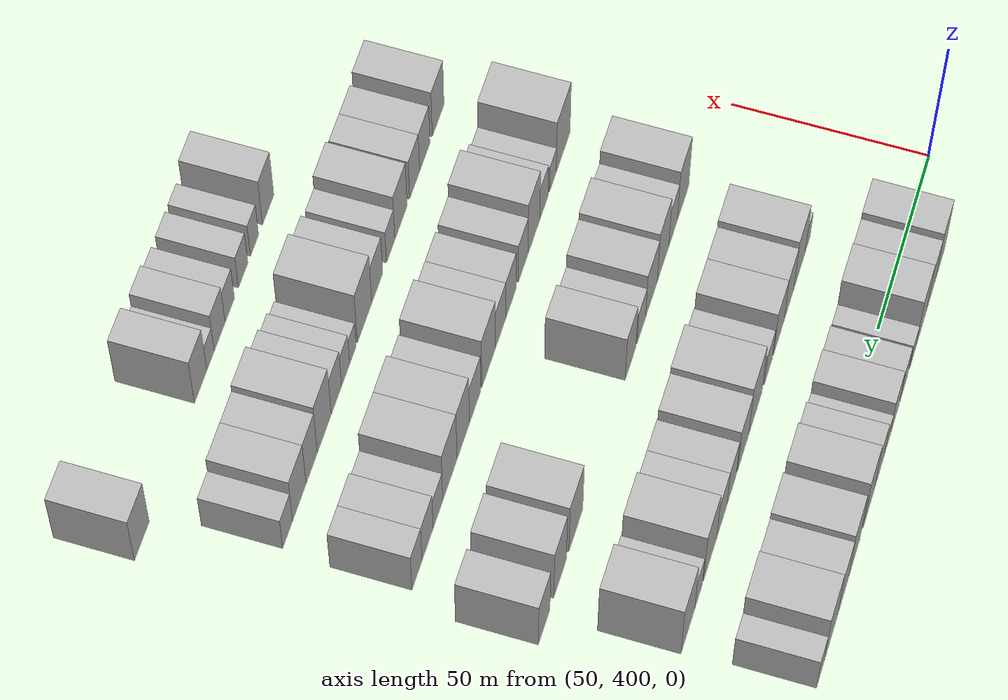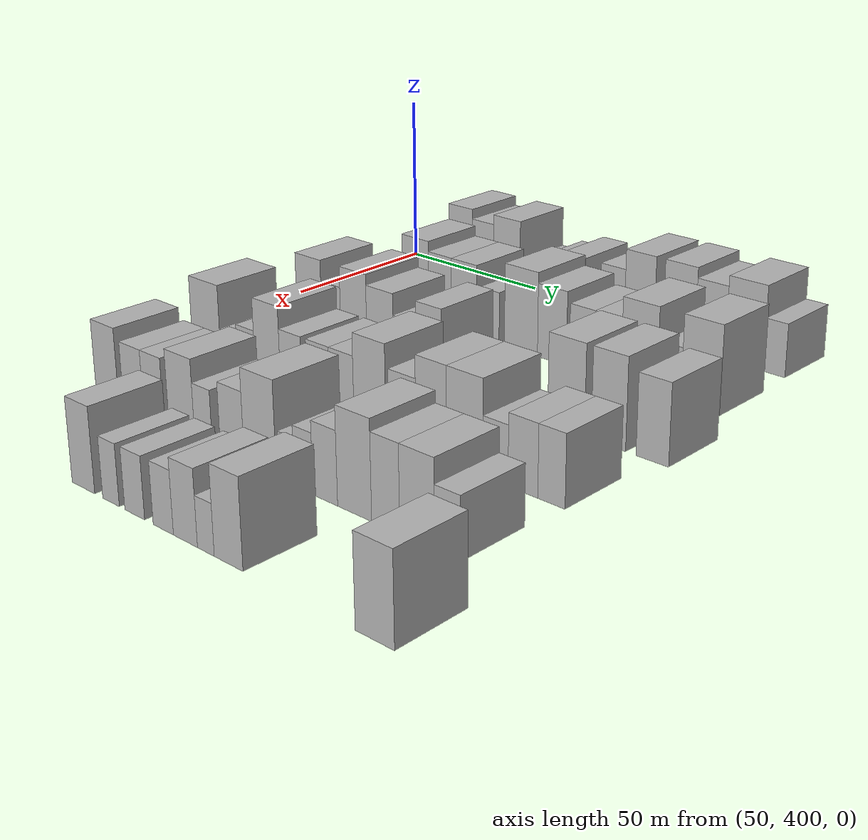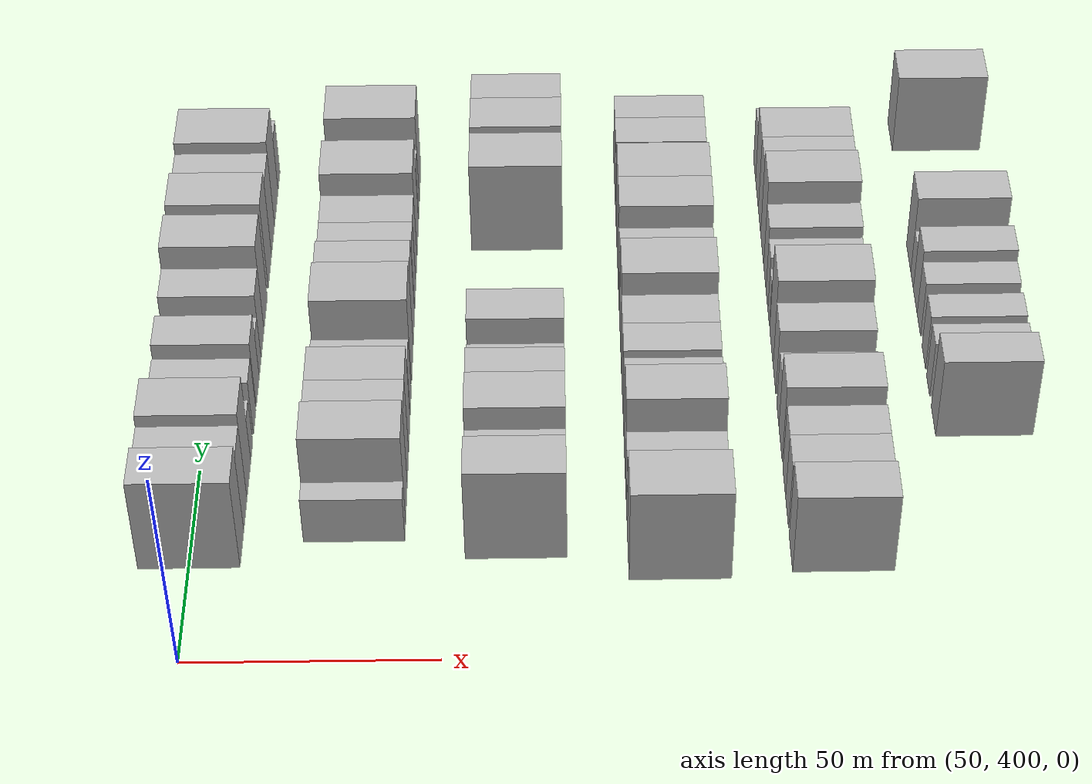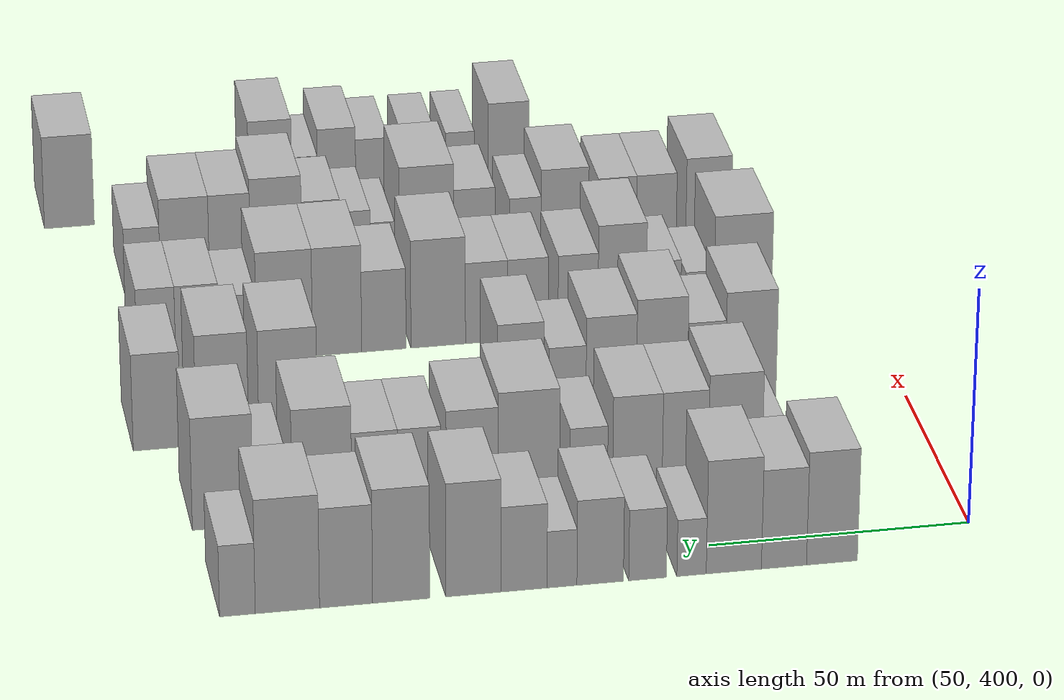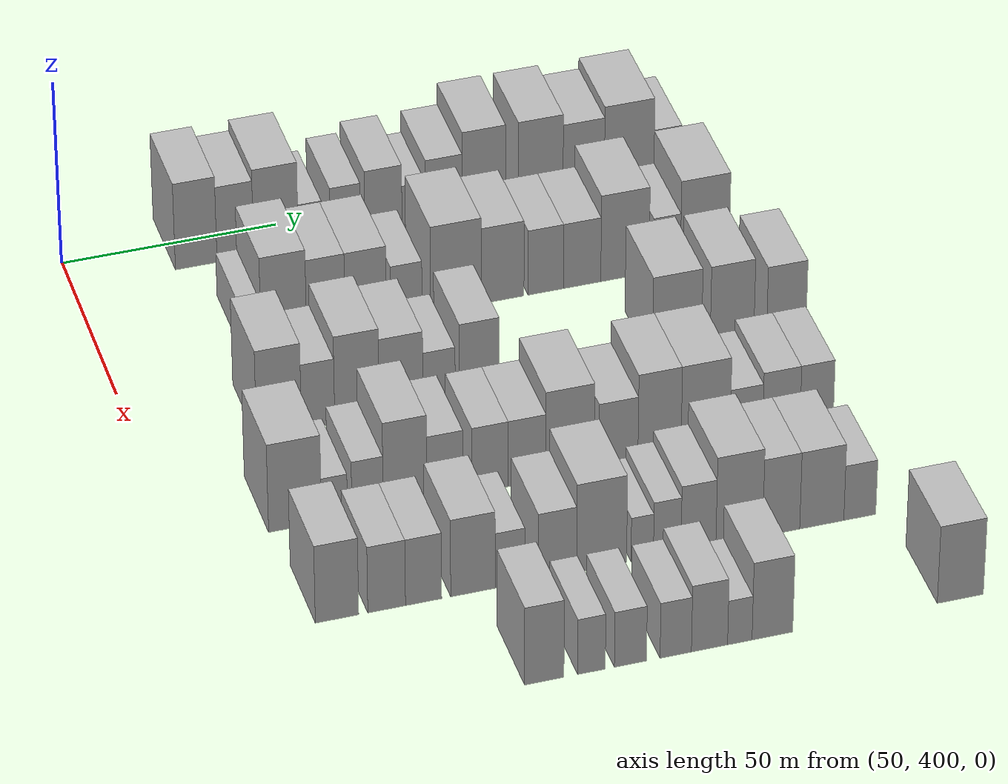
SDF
<sdf version="1.6">
 <world name="default">
  <model name="building_109">
   <static>1</static>
   <pose>50.0000 428.7145 0 0.000000 0.000000 0.000000</pose>
   <link name="link">
    <pose>0 0 12.00 0 0 0</pose>
    <collision name="collision"><geometry><box><size>20.0000 9.7054 24.0000</size></box></geometry></collision>
    <visual name="visual">
     <cast_shadows>0</cast_shadows>
     <geometry><box><size>20.0000 9.7054 24.0000</size></box></geometry>
     <material>
      <script>
       <uri>model://HANNAS_wall/materials/scripts</uri>
       <uri>model://HANNAS_wall/materials/textures</uri>
       <name>vrc/HANNAS_wall</name>
      </script>
     </material>
    </visual>
   </link>
  </model>
  <model name="building_110">
   <static>1</static>
   <pose>50.0000 437.8635 0 0.000000 0.000000 0.000000</pose>
   <link name="link">
    <pose>0 0 10.50 0 0 0</pose>
    <collision name="collision"><geometry><box><size>20.0000 8.5926 21.0000</size></box></geometry></collision>
    <visual name="visual">
     <cast_shadows>0</cast_shadows>
     <geometry><box><size>20.0000 8.5926 21.0000</size></box></geometry>
     <material>
      <script>
       <uri>model://HANNAS_wall/materials/scripts</uri>
       <uri>model://HANNAS_wall/materials/textures</uri>
       <name>vrc/HANNAS_wall</name>
      </script>
     </material>
    </visual>
   </link>
  </model>
  <model name="building_111">
   <static>1</static>
   <pose>50.0000 447.3969 0 0.000000 0.000000 0.000000</pose>
   <link name="link">
    <pose>0 0 12.00 0 0 0</pose>
    <collision name="collision"><geometry><box><size>20.0000 10.4743 24.0000</size></box></geometry></collision>
    <visual name="visual">
     <cast_shadows>0</cast_shadows>
     <geometry><box><size>20.0000 10.4743 24.0000</size></box></geometry>
     <material>
      <script>
       <uri>model://HANNAS_wall/materials/scripts</uri>
       <uri>model://HANNAS_wall/materials/textures</uri>
       <name>vrc/HANNAS_wall</name>
      </script>
     </material>
    </visual>
   </link>
  </model>
  <model name="building_112">
   <static>1</static>
   <pose>50.0000 455.4118 0 0.000000 0.000000 0.000000</pose>
   <link name="link">
    <pose>0 0 6.00 0 0 0</pose>
    <collision name="collision"><geometry><box><size>20.0000 5.5555 12.0000</size></box></geometry></collision>
    <visual name="visual">
     <cast_shadows>0</cast_shadows>
     <geometry><box><size>20.0000 5.5555 12.0000</size></box></geometry>
     <material>
      <script>
       <uri>model://HANNAS_wall/materials/scripts</uri>
       <uri>model://HANNAS_wall/materials/textures</uri>
       <name>vrc/HANNAS_wall</name>
      </script>
     </material>
    </visual>
   </link>
  </model>
  <model name="building_113">
   <static>1</static>
   <pose>50.0000 463.7420 0 0.000000 0.000000 0.000000</pose>
   <link name="link">
    <pose>0 0 7.50 0 0 0</pose>
    <collision name="collision"><geometry><box><size>20.0000 7.1051 15.0000</size></box></geometry></collision>
    <visual name="visual">
     <cast_shadows>0</cast_shadows>
     <geometry><box><size>20.0000 7.1051 15.0000</size></box></geometry>
     <material>
      <script>
       <uri>model://HANNAS_wall/materials/scripts</uri>
       <uri>model://HANNAS_wall/materials/textures</uri>
       <name>vrc/HANNAS_wall</name>
      </script>
     </material>
    </visual>
   </link>
  </model>
  <model name="building_114">
   <static>1</static>
   <pose>50.0000 472.6810 0 0.000000 0.000000 0.000000</pose>
   <link name="link">
    <pose>0 0 9.00 0 0 0</pose>
    <collision name="collision"><geometry><box><size>20.0000 8.7728 18.0000</size></box></geometry></collision>
    <visual name="visual">
     <cast_shadows>0</cast_shadows>
     <geometry><box><size>20.0000 8.7728 18.0000</size></box></geometry>
     <material>
      <script>
       <uri>model://HANNAS_wall/materials/scripts</uri>
       <uri>model://HANNAS_wall/materials/textures</uri>
       <name>vrc/HANNAS_wall</name>
      </script>
     </material>
    </visual>
   </link>
  </model>
  <model name="building_115">
   <static>1</static>
   <pose>50.0000 479.8741 0 0.000000 0.000000 0.000000</pose>
   <link name="link">
    <pose>0 0 6.00 0 0 0</pose>
    <collision name="collision"><geometry><box><size>20.0000 5.6135 12.0000</size></box></geometry></collision>
    <visual name="visual">
     <cast_shadows>0</cast_shadows>
     <geometry><box><size>20.0000 5.6135 12.0000</size></box></geometry>
     <material>
      <script>
       <uri>model://HANNAS_wall/materials/scripts</uri>
       <uri>model://HANNAS_wall/materials/textures</uri>
       <name>vrc/HANNAS_wall</name>
      </script>
     </material>
    </visual>
   </link>
  </model>
  <model name="building_116">
   <static>1</static>
   <pose>50.0000 487.0221 0 0.000000 0.000000 0.000000</pose>
   <link name="link">
    <pose>0 0 9.00 0 0 0</pose>
    <collision name="collision"><geometry><box><size>20.0000 8.6824 18.0000</size></box></geometry></collision>
    <visual name="visual">
     <cast_shadows>0</cast_shadows>
     <geometry><box><size>20.0000 8.6824 18.0000</size></box></geometry>
     <material>
      <script>
       <uri>model://HANNAS_wall/materials/scripts</uri>
       <uri>model://HANNAS_wall/materials/textures</uri>
       <name>vrc/HANNAS_wall</name>
      </script>
     </material>
    </visual>
   </link>
  </model>
  <model name="building_117">
   <static>1</static>
   <pose>50.0000 496.5156 0 0.000000 0.000000 0.000000</pose>
   <link name="link">
    <pose>0 0 12.00 0 0 0</pose>
    <collision name="collision"><geometry><box><size>20.0000 10.3046 24.0000</size></box></geometry></collision>
    <visual name="visual">
     <cast_shadows>0</cast_shadows>
     <geometry><box><size>20.0000 10.3046 24.0000</size></box></geometry>
     <material>
      <script>
       <uri>model://HANNAS_wall/materials/scripts</uri>
       <uri>model://HANNAS_wall/materials/textures</uri>
       <name>vrc/HANNAS_wall</name>
      </script>
     </material>
    </visual>
   </link>
  </model>
  <model name="building_118">
   <static>1</static>
   <pose>50.0000 509.9971 0 0.000000 0.000000 0.000000</pose>
   <link name="link">
    <pose>0 0 12.00 0 0 0</pose>
    <collision name="collision"><geometry><box><size>20.0000 10.6583 24.0000</size></box></geometry></collision>
    <visual name="visual">
     <cast_shadows>0</cast_shadows>
     <geometry><box><size>20.0000 10.6583 24.0000</size></box></geometry>
     <material>
      <script>
       <uri>model://HANNAS_wall/materials/scripts</uri>
       <uri>model://HANNAS_wall/materials/textures</uri>
       <name>vrc/HANNAS_wall</name>
      </script>
     </material>
    </visual>
   </link>
  </model>
  <model name="building_119">
   <static>1</static>
   <pose>50.0000 520.2662 0 0.000000 0.000000 0.000000</pose>
   <link name="link">
    <pose>0 0 10.50 0 0 0</pose>
    <collision name="collision"><geometry><box><size>20.0000 9.8800 21.0000</size></box></geometry></collision>
    <visual name="visual">
     <cast_shadows>0</cast_shadows>
     <geometry><box><size>20.0000 9.8800 21.0000</size></box></geometry>
     <material>
      <script>
       <uri>model://HANNAS_wall/materials/scripts</uri>
       <uri>model://HANNAS_wall/materials/textures</uri>
       <name>vrc/HANNAS_wall</name>
      </script>
     </material>
    </visual>
   </link>
  </model>
  <model name="building_120">
   <static>1</static>
   <pose>50.0000 531.1638 0 0.000000 0.000000 0.000000</pose>
   <link name="link">
    <pose>0 0 12.00 0 0 0</pose>
    <collision name="collision"><geometry><box><size>20.0000 11.9153 24.0000</size></box></geometry></collision>
    <visual name="visual">
     <cast_shadows>0</cast_shadows>
     <geometry><box><size>20.0000 11.9153 24.0000</size></box></geometry>
     <material>
      <script>
       <uri>model://HANNAS_wall/materials/scripts</uri>
       <uri>model://HANNAS_wall/materials/textures</uri>
       <name>vrc/HANNAS_wall</name>
      </script>
     </material>
    </visual>
   </link>
  </model>
  <model name="building_121">
   <static>1</static>
   <pose>50.0000 540.4291 0 0.000000 0.000000 0.000000</pose>
   <link name="link">
    <pose>0 0 7.50 0 0 0</pose>
    <collision name="collision"><geometry><box><size>20.0000 6.6153 15.0000</size></box></geometry></collision>
    <visual name="visual">
     <cast_shadows>0</cast_shadows>
     <geometry><box><size>20.0000 6.6153 15.0000</size></box></geometry>
     <material>
      <script>
       <uri>model://HANNAS_wall/materials/scripts</uri>
       <uri>model://HANNAS_wall/materials/textures</uri>
       <name>vrc/HANNAS_wall</name>
      </script>
     </material>
    </visual>
   </link>
  </model>
  <model name="building_232">
   <static>1</static>
   <pose>82.0000 432.7673 0 0.000000 0.000000 0.000000</pose>
   <link name="link">
    <pose>0 0 6.00 0 0 0</pose>
    <collision name="collision"><geometry><box><size>20.0000 4.8254 12.0000</size></box></geometry></collision>
    <visual name="visual">
     <cast_shadows>0</cast_shadows>
     <geometry><box><size>20.0000 4.8254 12.0000</size></box></geometry>
     <material>
      <script>
       <uri>model://HANNAS_wall/materials/scripts</uri>
       <uri>model://HANNAS_wall/materials/textures</uri>
       <name>vrc/HANNAS_wall</name>
      </script>
     </material>
    </visual>
   </link>
  </model>
  <model name="building_233">
   <static>1</static>
   <pose>82.0000 440.4230 0 0.000000 0.000000 0.000000</pose>
   <link name="link">
    <pose>0 0 12.00 0 0 0</pose>
    <collision name="collision"><geometry><box><size>20.0000 10.4860 24.0000</size></box></geometry></collision>
    <visual name="visual">
     <cast_shadows>0</cast_shadows>
     <geometry><box><size>20.0000 10.4860 24.0000</size></box></geometry>
     <material>
      <script>
       <uri>model://HANNAS_wall/materials/scripts</uri>
       <uri>model://HANNAS_wall/materials/textures</uri>
       <name>vrc/HANNAS_wall</name>
      </script>
     </material>
    </visual>
   </link>
  </model>
  <model name="building_234">
   <static>1</static>
   <pose>82.0000 450.1251 0 0.000000 0.000000 0.000000</pose>
   <link name="link">
    <pose>0 0 10.50 0 0 0</pose>
    <collision name="collision"><geometry><box><size>20.0000 8.9182 21.0000</size></box></geometry></collision>
    <visual name="visual">
     <cast_shadows>0</cast_shadows>
     <geometry><box><size>20.0000 8.9182 21.0000</size></box></geometry>
     <material>
      <script>
       <uri>model://HANNAS_wall/materials/scripts</uri>
       <uri>model://HANNAS_wall/materials/textures</uri>
       <name>vrc/HANNAS_wall</name>
      </script>
     </material>
    </visual>
   </link>
  </model>
  <model name="building_235">
   <static>1</static>
   <pose>82.0000 459.3896 0 0.000000 0.000000 0.000000</pose>
   <link name="link">
    <pose>0 0 10.50 0 0 0</pose>
    <collision name="collision"><geometry><box><size>20.0000 9.6107 21.0000</size></box></geometry></collision>
    <visual name="visual">
     <cast_shadows>0</cast_shadows>
     <geometry><box><size>20.0000 9.6107 21.0000</size></box></geometry>
     <material>
      <script>
       <uri>model://HANNAS_wall/materials/scripts</uri>
       <uri>model://HANNAS_wall/materials/textures</uri>
       <name>vrc/HANNAS_wall</name>
      </script>
     </material>
    </visual>
   </link>
  </model>
  <model name="building_236">
   <static>1</static>
   <pose>82.0000 468.8273 0 0.000000 0.000000 0.000000</pose>
   <link name="link">
    <pose>0 0 7.50 0 0 0</pose>
    <collision name="collision"><geometry><box><size>20.0000 7.2645 15.0000</size></box></geometry></collision>
    <visual name="visual">
     <cast_shadows>0</cast_shadows>
     <geometry><box><size>20.0000 7.2645 15.0000</size></box></geometry>
     <material>
      <script>
       <uri>model://HANNAS_wall/materials/scripts</uri>
       <uri>model://HANNAS_wall/materials/textures</uri>
       <name>vrc/HANNAS_wall</name>
      </script>
     </material>
    </visual>
   </link>
  </model>
  <model name="building_237">
   <static>1</static>
   <pose>82.0000 480.3579 0 0.000000 0.000000 0.000000</pose>
   <link name="link">
    <pose>0 0 12.00 0 0 0</pose>
    <collision name="collision"><geometry><box><size>20.0000 11.7968 24.0000</size></box></geometry></collision>
    <visual name="visual">
     <cast_shadows>0</cast_shadows>
     <geometry><box><size>20.0000 11.7968 24.0000</size></box></geometry>
     <material>
      <script>
       <uri>model://HANNAS_wall/materials/scripts</uri>
       <uri>model://HANNAS_wall/materials/textures</uri>
       <name>vrc/HANNAS_wall</name>
      </script>
     </material>
    </visual>
   </link>
  </model>
  <model name="building_238">
   <static>1</static>
   <pose>82.0000 491.2568 0 0.000000 0.000000 0.000000</pose>
   <link name="link">
    <pose>0 0 10.50 0 0 0</pose>
    <collision name="collision"><geometry><box><size>20.0000 10.0009 21.0000</size></box></geometry></collision>
    <visual name="visual">
     <cast_shadows>0</cast_shadows>
     <geometry><box><size>20.0000 10.0009 21.0000</size></box></geometry>
     <material>
      <script>
       <uri>model://HANNAS_wall/materials/scripts</uri>
       <uri>model://HANNAS_wall/materials/textures</uri>
       <name>vrc/HANNAS_wall</name>
      </script>
     </material>
    </visual>
   </link>
  </model>
  <model name="building_239">
   <static>1</static>
   <pose>82.0000 501.3874 0 0.000000 0.000000 0.000000</pose>
   <link name="link">
    <pose>0 0 9.00 0 0 0</pose>
    <collision name="collision"><geometry><box><size>20.0000 8.2604 18.0000</size></box></geometry></collision>
    <visual name="visual">
     <cast_shadows>0</cast_shadows>
     <geometry><box><size>20.0000 8.2604 18.0000</size></box></geometry>
     <material>
      <script>
       <uri>model://HANNAS_wall/materials/scripts</uri>
       <uri>model://HANNAS_wall/materials/textures</uri>
       <name>vrc/HANNAS_wall</name>
      </script>
     </material>
    </visual>
   </link>
  </model>
  <model name="building_240">
   <static>1</static>
   <pose>82.0000 509.9191 0 0.000000 0.000000 0.000000</pose>
   <link name="link">
    <pose>0 0 9.00 0 0 0</pose>
    <collision name="collision"><geometry><box><size>20.0000 8.8029 18.0000</size></box></geometry></collision>
    <visual name="visual">
     <cast_shadows>0</cast_shadows>
     <geometry><box><size>20.0000 8.8029 18.0000</size></box></geometry>
     <material>
      <script>
       <uri>model://HANNAS_wall/materials/scripts</uri>
       <uri>model://HANNAS_wall/materials/textures</uri>
       <name>vrc/HANNAS_wall</name>
      </script>
     </material>
    </visual>
   </link>
  </model>
  <model name="building_241">
   <static>1</static>
   <pose>82.0000 520.0084 0 0.000000 0.000000 0.000000</pose>
   <link name="link">
    <pose>0 0 12.00 0 0 0</pose>
    <collision name="collision"><geometry><box><size>20.0000 11.3758 24.0000</size></box></geometry></collision>
    <visual name="visual">
     <cast_shadows>0</cast_shadows>
     <geometry><box><size>20.0000 11.3758 24.0000</size></box></geometry>
     <material>
      <script>
       <uri>model://HANNAS_wall/materials/scripts</uri>
       <uri>model://HANNAS_wall/materials/textures</uri>
       <name>vrc/HANNAS_wall</name>
      </script>
     </material>
    </visual>
   </link>
  </model>
  <model name="building_242">
   <static>1</static>
   <pose>82.0000 529.9049 0 0.000000 0.000000 0.000000</pose>
   <link name="link">
    <pose>0 0 7.50 0 0 0</pose>
    <collision name="collision"><geometry><box><size>20.0000 6.4173 15.0000</size></box></geometry></collision>
    <visual name="visual">
     <cast_shadows>0</cast_shadows>
     <geometry><box><size>20.0000 6.4173 15.0000</size></box></geometry>
     <material>
      <script>
       <uri>model://HANNAS_wall/materials/scripts</uri>
       <uri>model://HANNAS_wall/materials/textures</uri>
       <name>vrc/HANNAS_wall</name>
      </script>
     </material>
    </visual>
   </link>
  </model>
  <model name="building_243">
   <static>1</static>
   <pose>82.0000 538.9012 0 0.000000 0.000000 0.000000</pose>
   <link name="link">
    <pose>0 0 12.00 0 0 0</pose>
    <collision name="collision"><geometry><box><size>20.0000 11.5752 24.0000</size></box></geometry></collision>
    <visual name="visual">
     <cast_shadows>0</cast_shadows>
     <geometry><box><size>20.0000 11.5752 24.0000</size></box></geometry>
     <material>
      <script>
       <uri>model://HANNAS_wall/materials/scripts</uri>
       <uri>model://HANNAS_wall/materials/textures</uri>
       <name>vrc/HANNAS_wall</name>
      </script>
     </material>
    </visual>
   </link>
  </model>
  <model name="building_354">
   <static>1</static>
   <pose>114.0000 430.5016 0 0.000000 0.000000 0.000000</pose>
   <link name="link">
    <pose>0 0 12.00 0 0 0</pose>
    <collision name="collision"><geometry><box><size>20.0000 10.1910 24.0000</size></box></geometry></collision>
    <visual name="visual">
     <cast_shadows>0</cast_shadows>
     <geometry><box><size>20.0000 10.1910 24.0000</size></box></geometry>
     <material>
      <script>
       <uri>model://HANNAS_wall/materials/scripts</uri>
       <uri>model://HANNAS_wall/materials/textures</uri>
       <name>vrc/HANNAS_wall</name>
      </script>
     </material>
    </visual>
   </link>
  </model>
  <model name="building_355">
   <static>1</static>
   <pose>114.0000 439.3830 0 0.000000 0.000000 0.000000</pose>
   <link name="link">
    <pose>0 0 9.00 0 0 0</pose>
    <collision name="collision"><geometry><box><size>20.0000 7.5718 18.0000</size></box></geometry></collision>
    <visual name="visual">
     <cast_shadows>0</cast_shadows>
     <geometry><box><size>20.0000 7.5718 18.0000</size></box></geometry>
     <material>
      <script>
       <uri>model://HANNAS_wall/materials/scripts</uri>
       <uri>model://HANNAS_wall/materials/textures</uri>
       <name>vrc/HANNAS_wall</name>
      </script>
     </material>
    </visual>
   </link>
  </model>
  <model name="building_356">
   <static>1</static>
   <pose>114.0000 448.2454 0 0.000000 0.000000 0.000000</pose>
   <link name="link">
    <pose>0 0 12.00 0 0 0</pose>
    <collision name="collision"><geometry><box><size>20.0000 10.1531 24.0000</size></box></geometry></collision>
    <visual name="visual">
     <cast_shadows>0</cast_shadows>
     <geometry><box><size>20.0000 10.1531 24.0000</size></box></geometry>
     <material>
      <script>
       <uri>model://HANNAS_wall/materials/scripts</uri>
       <uri>model://HANNAS_wall/materials/textures</uri>
       <name>vrc/HANNAS_wall</name>
      </script>
     </material>
    </visual>
   </link>
  </model>
  <model name="building_357">
   <static>1</static>
   <pose>114.0000 458.3241 0 0.000000 0.000000 0.000000</pose>
   <link name="link">
    <pose>0 0 10.50 0 0 0</pose>
    <collision name="collision"><geometry><box><size>20.0000 10.0042 21.0000</size></box></geometry></collision>
    <visual name="visual">
     <cast_shadows>0</cast_shadows>
     <geometry><box><size>20.0000 10.0042 21.0000</size></box></geometry>
     <material>
      <script>
       <uri>model://HANNAS_wall/materials/scripts</uri>
       <uri>model://HANNAS_wall/materials/textures</uri>
       <name>vrc/HANNAS_wall</name>
      </script>
     </material>
    </visual>
   </link>
  </model>
  <model name="building_358">
   <static>1</static>
   <pose>114.0000 467.0139 0 0.000000 0.000000 0.000000</pose>
   <link name="link">
    <pose>0 0 7.50 0 0 0</pose>
    <collision name="collision"><geometry><box><size>20.0000 7.3754 15.0000</size></box></geometry></collision>
    <visual name="visual">
     <cast_shadows>0</cast_shadows>
     <geometry><box><size>20.0000 7.3754 15.0000</size></box></geometry>
     <material>
      <script>
       <uri>model://HANNAS_wall/materials/scripts</uri>
       <uri>model://HANNAS_wall/materials/textures</uri>
       <name>vrc/HANNAS_wall</name>
      </script>
     </material>
    </visual>
   </link>
  </model>
  <model name="building_359">
   <static>1</static>
   <pose>114.0000 476.2585 0 0.000000 0.000000 0.000000</pose>
   <link name="link">
    <pose>0 0 10.50 0 0 0</pose>
    <collision name="collision"><geometry><box><size>20.0000 9.1138 21.0000</size></box></geometry></collision>
    <visual name="visual">
     <cast_shadows>0</cast_shadows>
     <geometry><box><size>20.0000 9.1138 21.0000</size></box></geometry>
     <material>
      <script>
       <uri>model://HANNAS_wall/materials/scripts</uri>
       <uri>model://HANNAS_wall/materials/textures</uri>
       <name>vrc/HANNAS_wall</name>
      </script>
     </material>
    </visual>
   </link>
  </model>
  <model name="building_360">
   <static>1</static>
   <pose>114.0000 521.9380 0 0.000000 0.000000 0.000000</pose>
   <link name="link">
    <pose>0 0 12.00 0 0 0</pose>
    <collision name="collision"><geometry><box><size>20.0000 11.4151 24.0000</size></box></geometry></collision>
    <visual name="visual">
     <cast_shadows>0</cast_shadows>
     <geometry><box><size>20.0000 11.4151 24.0000</size></box></geometry>
     <material>
      <script>
       <uri>model://HANNAS_wall/materials/scripts</uri>
       <uri>model://HANNAS_wall/materials/textures</uri>
       <name>vrc/HANNAS_wall</name>
      </script>
     </material>
    </visual>
   </link>
  </model>
  <model name="building_361">
   <static>1</static>
   <pose>114.0000 534.7525 0 0.000000 0.000000 0.000000</pose>
   <link name="link">
    <pose>0 0 12.00 0 0 0</pose>
    <collision name="collision"><geometry><box><size>20.0000 10.2140 24.0000</size></box></geometry></collision>
    <visual name="visual">
     <cast_shadows>0</cast_shadows>
     <geometry><box><size>20.0000 10.2140 24.0000</size></box></geometry>
     <material>
      <script>
       <uri>model://HANNAS_wall/materials/scripts</uri>
       <uri>model://HANNAS_wall/materials/textures</uri>
       <name>vrc/HANNAS_wall</name>
      </script>
     </material>
    </visual>
   </link>
  </model>
  <model name="building_362">
   <static>1</static>
   <pose>114.0000 547.4878 0 0.000000 0.000000 0.000000</pose>
   <link name="link">
    <pose>0 0 10.50 0 0 0</pose>
    <collision name="collision"><geometry><box><size>20.0000 9.2567 21.0000</size></box></geometry></collision>
    <visual name="visual">
     <cast_shadows>0</cast_shadows>
     <geometry><box><size>20.0000 9.2567 21.0000</size></box></geometry>
     <material>
      <script>
       <uri>model://HANNAS_wall/materials/scripts</uri>
       <uri>model://HANNAS_wall/materials/textures</uri>
       <name>vrc/HANNAS_wall</name>
      </script>
     </material>
    </visual>
   </link>
  </model>
  <model name="building_465">
   <static>1</static>
   <pose>146.0000 425.2959 0 0.000000 0.000000 0.000000</pose>
   <link name="link">
    <pose>0 0 12.00 0 0 0</pose>
    <collision name="collision"><geometry><box><size>20.0000 11.8291 24.0000</size></box></geometry></collision>
    <visual name="visual">
     <cast_shadows>0</cast_shadows>
     <geometry><box><size>20.0000 11.8291 24.0000</size></box></geometry>
     <material>
      <script>
       <uri>model://HANNAS_wall/materials/scripts</uri>
       <uri>model://HANNAS_wall/materials/textures</uri>
       <name>vrc/HANNAS_wall</name>
      </script>
     </material>
    </visual>
   </link>
  </model>
  <model name="building_466">
   <static>1</static>
   <pose>146.0000 434.1074 0 0.000000 0.000000 0.000000</pose>
   <link name="link">
    <pose>0 0 6.00 0 0 0</pose>
    <collision name="collision"><geometry><box><size>20.0000 5.7938 12.0000</size></box></geometry></collision>
    <visual name="visual">
     <cast_shadows>0</cast_shadows>
     <geometry><box><size>20.0000 5.7938 12.0000</size></box></geometry>
     <material>
      <script>
       <uri>model://HANNAS_wall/materials/scripts</uri>
       <uri>model://HANNAS_wall/materials/textures</uri>
       <name>vrc/HANNAS_wall</name>
      </script>
     </material>
    </visual>
   </link>
  </model>
  <model name="building_467">
   <static>1</static>
   <pose>146.0000 441.5183 0 0.000000 0.000000 0.000000</pose>
   <link name="link">
    <pose>0 0 7.50 0 0 0</pose>
    <collision name="collision"><geometry><box><size>20.0000 7.0281 15.0000</size></box></geometry></collision>
    <visual name="visual">
     <cast_shadows>0</cast_shadows>
     <geometry><box><size>20.0000 7.0281 15.0000</size></box></geometry>
     <material>
      <script>
       <uri>model://HANNAS_wall/materials/scripts</uri>
       <uri>model://HANNAS_wall/materials/textures</uri>
       <name>vrc/HANNAS_wall</name>
      </script>
     </material>
    </visual>
   </link>
  </model>
  <model name="building_468">
   <static>1</static>
   <pose>146.0000 449.9457 0 0.000000 0.000000 0.000000</pose>
   <link name="link">
    <pose>0 0 12.00 0 0 0</pose>
    <collision name="collision"><geometry><box><size>20.0000 9.8267 24.0000</size></box></geometry></collision>
    <visual name="visual">
     <cast_shadows>0</cast_shadows>
     <geometry><box><size>20.0000 9.8267 24.0000</size></box></geometry>
     <material>
      <script>
       <uri>model://HANNAS_wall/materials/scripts</uri>
       <uri>model://HANNAS_wall/materials/textures</uri>
       <name>vrc/HANNAS_wall</name>
      </script>
     </material>
    </visual>
   </link>
  </model>
  <model name="building_469">
   <static>1</static>
   <pose>146.0000 458.9130 0 0.000000 0.000000 0.000000</pose>
   <link name="link">
    <pose>0 0 9.00 0 0 0</pose>
    <collision name="collision"><geometry><box><size>20.0000 8.1079 18.0000</size></box></geometry></collision>
    <visual name="visual">
     <cast_shadows>0</cast_shadows>
     <geometry><box><size>20.0000 8.1079 18.0000</size></box></geometry>
     <material>
      <script>
       <uri>model://HANNAS_wall/materials/scripts</uri>
       <uri>model://HANNAS_wall/materials/textures</uri>
       <name>vrc/HANNAS_wall</name>
      </script>
     </material>
    </visual>
   </link>
  </model>
  <model name="building_470">
   <static>1</static>
   <pose>146.0000 469.0784 0 0.000000 0.000000 0.000000</pose>
   <link name="link">
    <pose>0 0 9.00 0 0 0</pose>
    <collision name="collision"><geometry><box><size>20.0000 8.2228 18.0000</size></box></geometry></collision>
    <visual name="visual">
     <cast_shadows>0</cast_shadows>
     <geometry><box><size>20.0000 8.2228 18.0000</size></box></geometry>
     <material>
      <script>
       <uri>model://HANNAS_wall/materials/scripts</uri>
       <uri>model://HANNAS_wall/materials/textures</uri>
       <name>vrc/HANNAS_wall</name>
      </script>
     </material>
    </visual>
   </link>
  </model>
  <model name="building_471">
   <static>1</static>
   <pose>146.0000 477.4521 0 0.000000 0.000000 0.000000</pose>
   <link name="link">
    <pose>0 0 9.00 0 0 0</pose>
    <collision name="collision"><geometry><box><size>20.0000 8.5247 18.0000</size></box></geometry></collision>
    <visual name="visual">
     <cast_shadows>0</cast_shadows>
     <geometry><box><size>20.0000 8.5247 18.0000</size></box></geometry>
     <material>
      <script>
       <uri>model://HANNAS_wall/materials/scripts</uri>
       <uri>model://HANNAS_wall/materials/textures</uri>
       <name>vrc/HANNAS_wall</name>
      </script>
     </material>
    </visual>
   </link>
  </model>
  <model name="building_472">
   <static>1</static>
   <pose>146.0000 487.2167 0 0.000000 0.000000 0.000000</pose>
   <link name="link">
    <pose>0 0 12.00 0 0 0</pose>
    <collision name="collision"><geometry><box><size>20.0000 11.0045 24.0000</size></box></geometry></collision>
    <visual name="visual">
     <cast_shadows>0</cast_shadows>
     <geometry><box><size>20.0000 11.0045 24.0000</size></box></geometry>
     <material>
      <script>
       <uri>model://HANNAS_wall/materials/scripts</uri>
       <uri>model://HANNAS_wall/materials/textures</uri>
       <name>vrc/HANNAS_wall</name>
      </script>
     </material>
    </visual>
   </link>
  </model>
  <model name="building_473">
   <static>1</static>
   <pose>146.0000 498.1864 0 0.000000 0.000000 0.000000</pose>
   <link name="link">
    <pose>0 0 9.00 0 0 0</pose>
    <collision name="collision"><geometry><box><size>20.0000 8.9347 18.0000</size></box></geometry></collision>
    <visual name="visual">
     <cast_shadows>0</cast_shadows>
     <geometry><box><size>20.0000 8.9347 18.0000</size></box></geometry>
     <material>
      <script>
       <uri>model://HANNAS_wall/materials/scripts</uri>
       <uri>model://HANNAS_wall/materials/textures</uri>
       <name>vrc/HANNAS_wall</name>
      </script>
     </material>
    </visual>
   </link>
  </model>
  <model name="building_474">
   <static>1</static>
   <pose>146.0000 507.5810 0 0.000000 0.000000 0.000000</pose>
   <link name="link">
    <pose>0 0 12.00 0 0 0</pose>
    <collision name="collision"><geometry><box><size>20.0000 9.8547 24.0000</size></box></geometry></collision>
    <visual name="visual">
     <cast_shadows>0</cast_shadows>
     <geometry><box><size>20.0000 9.8547 24.0000</size></box></geometry>
     <material>
      <script>
       <uri>model://HANNAS_wall/materials/scripts</uri>
       <uri>model://HANNAS_wall/materials/textures</uri>
       <name>vrc/HANNAS_wall</name>
      </script>
     </material>
    </visual>
   </link>
  </model>
  <model name="building_475">
   <static>1</static>
   <pose>146.0000 518.1200 0 0.000000 0.000000 0.000000</pose>
   <link name="link">
    <pose>0 0 12.00 0 0 0</pose>
    <collision name="collision"><geometry><box><size>20.0000 11.2233 24.0000</size></box></geometry></collision>
    <visual name="visual">
     <cast_shadows>0</cast_shadows>
     <geometry><box><size>20.0000 11.2233 24.0000</size></box></geometry>
     <material>
      <script>
       <uri>model://HANNAS_wall/materials/scripts</uri>
       <uri>model://HANNAS_wall/materials/textures</uri>
       <name>vrc/HANNAS_wall</name>
      </script>
     </material>
    </visual>
   </link>
  </model>
  <model name="building_476">
   <static>1</static>
   <pose>146.0000 527.4781 0 0.000000 0.000000 0.000000</pose>
   <link name="link">
    <pose>0 0 7.50 0 0 0</pose>
    <collision name="collision"><geometry><box><size>20.0000 7.4928 15.0000</size></box></geometry></collision>
    <visual name="visual">
     <cast_shadows>0</cast_shadows>
     <geometry><box><size>20.0000 7.4928 15.0000</size></box></geometry>
     <material>
      <script>
       <uri>model://HANNAS_wall/materials/scripts</uri>
       <uri>model://HANNAS_wall/materials/textures</uri>
       <name>vrc/HANNAS_wall</name>
      </script>
     </material>
    </visual>
   </link>
  </model>
  <model name="building_477">
   <static>1</static>
   <pose>146.0000 535.5362 0 0.000000 0.000000 0.000000</pose>
   <link name="link">
    <pose>0 0 9.00 0 0 0</pose>
    <collision name="collision"><geometry><box><size>20.0000 8.6235 18.0000</size></box></geometry></collision>
    <visual name="visual">
     <cast_shadows>0</cast_shadows>
     <geometry><box><size>20.0000 8.6235 18.0000</size></box></geometry>
     <material>
      <script>
       <uri>model://HANNAS_wall/materials/scripts</uri>
       <uri>model://HANNAS_wall/materials/textures</uri>
       <name>vrc/HANNAS_wall</name>
      </script>
     </material>
    </visual>
   </link>
  </model>
  <model name="building_478">
   <static>1</static>
   <pose>146.0000 543.6947 0 0.000000 0.000000 0.000000</pose>
   <link name="link">
    <pose>0 0 9.00 0 0 0</pose>
    <collision name="collision"><geometry><box><size>20.0000 7.6934 18.0000</size></box></geometry></collision>
    <visual name="visual">
     <cast_shadows>0</cast_shadows>
     <geometry><box><size>20.0000 7.6934 18.0000</size></box></geometry>
     <material>
      <script>
       <uri>model://HANNAS_wall/materials/scripts</uri>
       <uri>model://HANNAS_wall/materials/textures</uri>
       <name>vrc/HANNAS_wall</name>
      </script>
     </material>
    </visual>
   </link>
  </model>
  <model name="building_578">
   <static>1</static>
   <pose>178.0000 425.6412 0 0.000000 0.000000 0.000000</pose>
   <link name="link">
    <pose>0 0 10.50 0 0 0</pose>
    <collision name="collision"><geometry><box><size>20.0000 9.5390 21.0000</size></box></geometry></collision>
    <visual name="visual">
     <cast_shadows>0</cast_shadows>
     <geometry><box><size>20.0000 9.5390 21.0000</size></box></geometry>
     <material>
      <script>
       <uri>model://HANNAS_wall/materials/scripts</uri>
       <uri>model://HANNAS_wall/materials/textures</uri>
       <name>vrc/HANNAS_wall</name>
      </script>
     </material>
    </visual>
   </link>
  </model>
  <model name="building_579">
   <static>1</static>
   <pose>178.0000 436.5696 0 0.000000 0.000000 0.000000</pose>
   <link name="link">
    <pose>0 0 9.00 0 0 0</pose>
    <collision name="collision"><geometry><box><size>20.0000 8.3179 18.0000</size></box></geometry></collision>
    <visual name="visual">
     <cast_shadows>0</cast_shadows>
     <geometry><box><size>20.0000 8.3179 18.0000</size></box></geometry>
     <material>
      <script>
       <uri>model://HANNAS_wall/materials/scripts</uri>
       <uri>model://HANNAS_wall/materials/textures</uri>
       <name>vrc/HANNAS_wall</name>
      </script>
     </material>
    </visual>
   </link>
  </model>
  <model name="building_580">
   <static>1</static>
   <pose>178.0000 444.7329 0 0.000000 0.000000 0.000000</pose>
   <link name="link">
    <pose>0 0 9.00 0 0 0</pose>
    <collision name="collision"><geometry><box><size>20.0000 8.0088 18.0000</size></box></geometry></collision>
    <visual name="visual">
     <cast_shadows>0</cast_shadows>
     <geometry><box><size>20.0000 8.0088 18.0000</size></box></geometry>
     <material>
      <script>
       <uri>model://HANNAS_wall/materials/scripts</uri>
       <uri>model://HANNAS_wall/materials/textures</uri>
       <name>vrc/HANNAS_wall</name>
      </script>
     </material>
    </visual>
   </link>
  </model>
  <model name="building_581">
   <static>1</static>
   <pose>178.0000 455.6670 0 0.000000 0.000000 0.000000</pose>
   <link name="link">
    <pose>0 0 10.50 0 0 0</pose>
    <collision name="collision"><geometry><box><size>20.0000 9.8593 21.0000</size></box></geometry></collision>
    <visual name="visual">
     <cast_shadows>0</cast_shadows>
     <geometry><box><size>20.0000 9.8593 21.0000</size></box></geometry>
     <material>
      <script>
       <uri>model://HANNAS_wall/materials/scripts</uri>
       <uri>model://HANNAS_wall/materials/textures</uri>
       <name>vrc/HANNAS_wall</name>
      </script>
     </material>
    </visual>
   </link>
  </model>
  <model name="building_582">
   <static>1</static>
   <pose>178.0000 463.8906 0 0.000000 0.000000 0.000000</pose>
   <link name="link">
    <pose>0 0 7.50 0 0 0</pose>
    <collision name="collision"><geometry><box><size>20.0000 6.5879 15.0000</size></box></geometry></collision>
    <visual name="visual">
     <cast_shadows>0</cast_shadows>
     <geometry><box><size>20.0000 6.5879 15.0000</size></box></geometry>
     <material>
      <script>
       <uri>model://HANNAS_wall/materials/scripts</uri>
       <uri>model://HANNAS_wall/materials/textures</uri>
       <name>vrc/HANNAS_wall</name>
      </script>
     </material>
    </visual>
   </link>
  </model>
  <model name="building_583">
   <static>1</static>
   <pose>178.0000 474.4629 0 0.000000 0.000000 0.000000</pose>
   <link name="link">
    <pose>0 0 9.00 0 0 0</pose>
    <collision name="collision"><geometry><box><size>20.0000 8.5567 18.0000</size></box></geometry></collision>
    <visual name="visual">
     <cast_shadows>0</cast_shadows>
     <geometry><box><size>20.0000 8.5567 18.0000</size></box></geometry>
     <material>
      <script>
       <uri>model://HANNAS_wall/materials/scripts</uri>
       <uri>model://HANNAS_wall/materials/textures</uri>
       <name>vrc/HANNAS_wall</name>
      </script>
     </material>
    </visual>
   </link>
  </model>
  <model name="building_584">
   <static>1</static>
   <pose>178.0000 484.3278 0 0.000000 0.000000 0.000000</pose>
   <link name="link">
    <pose>0 0 12.00 0 0 0</pose>
    <collision name="collision"><geometry><box><size>20.0000 11.1730 24.0000</size></box></geometry></collision>
    <visual name="visual">
     <cast_shadows>0</cast_shadows>
     <geometry><box><size>20.0000 11.1730 24.0000</size></box></geometry>
     <material>
      <script>
       <uri>model://HANNAS_wall/materials/scripts</uri>
       <uri>model://HANNAS_wall/materials/textures</uri>
       <name>vrc/HANNAS_wall</name>
      </script>
     </material>
    </visual>
   </link>
  </model>
  <model name="building_585">
   <static>1</static>
   <pose>178.0000 493.4267 0 0.000000 0.000000 0.000000</pose>
   <link name="link">
    <pose>0 0 6.00 0 0 0</pose>
    <collision name="collision"><geometry><box><size>20.0000 5.0247 12.0000</size></box></geometry></collision>
    <visual name="visual">
     <cast_shadows>0</cast_shadows>
     <geometry><box><size>20.0000 5.0247 12.0000</size></box></geometry>
     <material>
      <script>
       <uri>model://HANNAS_wall/materials/scripts</uri>
       <uri>model://HANNAS_wall/materials/textures</uri>
       <name>vrc/HANNAS_wall</name>
      </script>
     </material>
    </visual>
   </link>
  </model>
  <model name="building_586">
   <static>1</static>
   <pose>178.0000 499.0312 0 0.000000 0.000000 0.000000</pose>
   <link name="link">
    <pose>0 0 7.50 0 0 0</pose>
    <collision name="collision"><geometry><box><size>20.0000 6.1843 15.0000</size></box></geometry></collision>
    <visual name="visual">
     <cast_shadows>0</cast_shadows>
     <geometry><box><size>20.0000 6.1843 15.0000</size></box></geometry>
     <material>
      <script>
       <uri>model://HANNAS_wall/materials/scripts</uri>
       <uri>model://HANNAS_wall/materials/textures</uri>
       <name>vrc/HANNAS_wall</name>
      </script>
     </material>
    </visual>
   </link>
  </model>
  <model name="building_587">
   <static>1</static>
   <pose>178.0000 506.0624 0 0.000000 0.000000 0.000000</pose>
   <link name="link">
    <pose>0 0 9.00 0 0 0</pose>
    <collision name="collision"><geometry><box><size>20.0000 7.8782 18.0000</size></box></geometry></collision>
    <visual name="visual">
     <cast_shadows>0</cast_shadows>
     <geometry><box><size>20.0000 7.8782 18.0000</size></box></geometry>
     <material>
      <script>
       <uri>model://HANNAS_wall/materials/scripts</uri>
       <uri>model://HANNAS_wall/materials/textures</uri>
       <name>vrc/HANNAS_wall</name>
      </script>
     </material>
    </visual>
   </link>
  </model>
  <model name="building_588">
   <static>1</static>
   <pose>178.0000 515.2813 0 0.000000 0.000000 0.000000</pose>
   <link name="link">
    <pose>0 0 12.00 0 0 0</pose>
    <collision name="collision"><geometry><box><size>20.0000 10.5597 24.0000</size></box></geometry></collision>
    <visual name="visual">
     <cast_shadows>0</cast_shadows>
     <geometry><box><size>20.0000 10.5597 24.0000</size></box></geometry>
     <material>
      <script>
       <uri>model://HANNAS_wall/materials/scripts</uri>
       <uri>model://HANNAS_wall/materials/textures</uri>
       <name>vrc/HANNAS_wall</name>
      </script>
     </material>
    </visual>
   </link>
  </model>
  <model name="building_589">
   <static>1</static>
   <pose>178.0000 524.7671 0 0.000000 0.000000 0.000000</pose>
   <link name="link">
    <pose>0 0 10.50 0 0 0</pose>
    <collision name="collision"><geometry><box><size>20.0000 8.4118 21.0000</size></box></geometry></collision>
    <visual name="visual">
     <cast_shadows>0</cast_shadows>
     <geometry><box><size>20.0000 8.4118 21.0000</size></box></geometry>
     <material>
      <script>
       <uri>model://HANNAS_wall/materials/scripts</uri>
       <uri>model://HANNAS_wall/materials/textures</uri>
       <name>vrc/HANNAS_wall</name>
      </script>
     </material>
    </visual>
   </link>
  </model>
  <model name="building_590">
   <static>1</static>
   <pose>178.0000 533.9864 0 0.000000 0.000000 0.000000</pose>
   <link name="link">
    <pose>0 0 10.50 0 0 0</pose>
    <collision name="collision"><geometry><box><size>20.0000 10.0269 21.0000</size></box></geometry></collision>
    <visual name="visual">
     <cast_shadows>0</cast_shadows>
     <geometry><box><size>20.0000 10.0269 21.0000</size></box></geometry>
     <material>
      <script>
       <uri>model://HANNAS_wall/materials/scripts</uri>
       <uri>model://HANNAS_wall/materials/textures</uri>
       <name>vrc/HANNAS_wall</name>
      </script>
     </material>
    </visual>
   </link>
  </model>
  <model name="building_591">
   <static>1</static>
   <pose>178.0000 542.6408 0 0.000000 0.000000 0.000000</pose>
   <link name="link">
    <pose>0 0 7.50 0 0 0</pose>
    <collision name="collision"><geometry><box><size>20.0000 7.2817 15.0000</size></box></geometry></collision>
    <visual name="visual">
     <cast_shadows>0</cast_shadows>
     <geometry><box><size>20.0000 7.2817 15.0000</size></box></geometry>
     <material>
      <script>
       <uri>model://HANNAS_wall/materials/scripts</uri>
       <uri>model://HANNAS_wall/materials/textures</uri>
       <name>vrc/HANNAS_wall</name>
      </script>
     </material>
    </visual>
   </link>
  </model>
  <model name="building_694">
   <static>1</static>
   <pose>210.0000 461.6894 0 0.000000 0.000000 0.000000</pose>
   <link name="link">
    <pose>0 0 10.50 0 0 0</pose>
    <collision name="collision"><geometry><box><size>20.0000 8.6158 21.0000</size></box></geometry></collision>
    <visual name="visual">
     <cast_shadows>0</cast_shadows>
     <geometry><box><size>20.0000 8.6158 21.0000</size></box></geometry>
     <material>
      <script>
       <uri>model://HANNAS_wall/materials/scripts</uri>
       <uri>model://HANNAS_wall/materials/textures</uri>
       <name>vrc/HANNAS_wall</name>
      </script>
     </material>
    </visual>
   </link>
  </model>
  <model name="building_695">
   <static>1</static>
   <pose>210.0000 472.0380 0 0.000000 0.000000 0.000000</pose>
   <link name="link">
    <pose>0 0 7.50 0 0 0</pose>
    <collision name="collision"><geometry><box><size>20.0000 6.0816 15.0000</size></box></geometry></collision>
    <visual name="visual">
     <cast_shadows>0</cast_shadows>
     <geometry><box><size>20.0000 6.0816 15.0000</size></box></geometry>
     <material>
      <script>
       <uri>model://HANNAS_wall/materials/scripts</uri>
       <uri>model://HANNAS_wall/materials/textures</uri>
       <name>vrc/HANNAS_wall</name>
      </script>
     </material>
    </visual>
   </link>
  </model>
  <model name="building_696">
   <static>1</static>
   <pose>210.0000 480.6088 0 0.000000 0.000000 0.000000</pose>
   <link name="link">
    <pose>0 0 7.50 0 0 0</pose>
    <collision name="collision"><geometry><box><size>20.0000 7.0600 15.0000</size></box></geometry></collision>
    <visual name="visual">
     <cast_shadows>0</cast_shadows>
     <geometry><box><size>20.0000 7.0600 15.0000</size></box></geometry>
     <material>
      <script>
       <uri>model://HANNAS_wall/materials/scripts</uri>
       <uri>model://HANNAS_wall/materials/textures</uri>
       <name>vrc/HANNAS_wall</name>
      </script>
     </material>
    </visual>
   </link>
  </model>
  <model name="building_697">
   <static>1</static>
   <pose>210.0000 490.6049 0 0.000000 0.000000 0.000000</pose>
   <link name="link">
    <pose>0 0 7.50 0 0 0</pose>
    <collision name="collision"><geometry><box><size>20.0000 6.9322 15.0000</size></box></geometry></collision>
    <visual name="visual">
     <cast_shadows>0</cast_shadows>
     <geometry><box><size>20.0000 6.9322 15.0000</size></box></geometry>
     <material>
      <script>
       <uri>model://HANNAS_wall/materials/scripts</uri>
       <uri>model://HANNAS_wall/materials/textures</uri>
       <name>vrc/HANNAS_wall</name>
      </script>
     </material>
    </visual>
   </link>
  </model>
  <model name="building_698">
   <static>1</static>
   <pose>210.0000 498.0773 0 0.000000 0.000000 0.000000</pose>
   <link name="link">
    <pose>0 0 9.00 0 0 0</pose>
    <collision name="collision"><geometry><box><size>20.0000 8.0127 18.0000</size></box></geometry></collision>
    <visual name="visual">
     <cast_shadows>0</cast_shadows>
     <geometry><box><size>20.0000 8.0127 18.0000</size></box></geometry>
     <material>
      <script>
       <uri>model://HANNAS_wall/materials/scripts</uri>
       <uri>model://HANNAS_wall/materials/textures</uri>
       <name>vrc/HANNAS_wall</name>
      </script>
     </material>
    </visual>
   </link>
  </model>
  <model name="building_699">
   <static>1</static>
   <pose>210.0000 504.7991 0 0.000000 0.000000 0.000000</pose>
   <link name="link">
    <pose>0 0 6.00 0 0 0</pose>
    <collision name="collision"><geometry><box><size>20.0000 5.4309 12.0000</size></box></geometry></collision>
    <visual name="visual">
     <cast_shadows>0</cast_shadows>
     <geometry><box><size>20.0000 5.4309 12.0000</size></box></geometry>
     <material>
      <script>
       <uri>model://HANNAS_wall/materials/scripts</uri>
       <uri>model://HANNAS_wall/materials/textures</uri>
       <name>vrc/HANNAS_wall</name>
      </script>
     </material>
    </visual>
   </link>
  </model>
  <model name="building_700">
   <static>1</static>
   <pose>210.0000 512.0414 0 0.000000 0.000000 0.000000</pose>
   <link name="link">
    <pose>0 0 10.50 0 0 0</pose>
    <collision name="collision"><geometry><box><size>20.0000 9.0537 21.0000</size></box></geometry></collision>
    <visual name="visual">
     <cast_shadows>0</cast_shadows>
     <geometry><box><size>20.0000 9.0537 21.0000</size></box></geometry>
     <material>
      <script>
       <uri>model://HANNAS_wall/materials/scripts</uri>
       <uri>model://HANNAS_wall/materials/textures</uri>
       <name>vrc/HANNAS_wall</name>
      </script>
     </material>
    </visual>
   </link>
  </model>
  <model name="building_701">
   <static>1</static>
   <pose>210.0000 554.1275 0 0.000000 0.000000 0.000000</pose>
   <link name="link">
    <pose>0 0 10.50 0 0 0</pose>
    <collision name="collision"><geometry><box><size>20.0000 10.3728 21.0000</size></box></geometry></collision>
    <visual name="visual">
     <cast_shadows>0</cast_shadows>
     <geometry><box><size>20.0000 10.3728 21.0000</size></box></geometry>
     <material>
      <script>
       <uri>model://HANNAS_wall/materials/scripts</uri>
       <uri>model://HANNAS_wall/materials/textures</uri>
       <name>vrc/HANNAS_wall</name>
      </script>
     </material>
    </visual>
   </link>
  </model>
 </world>
</sdf>
